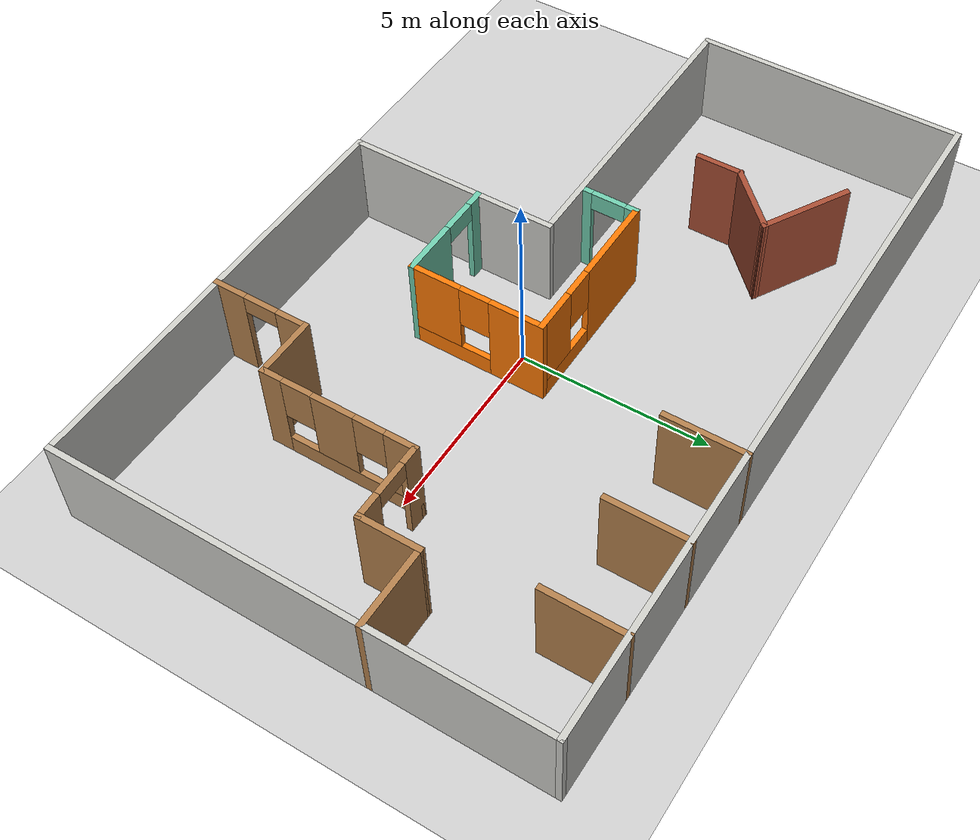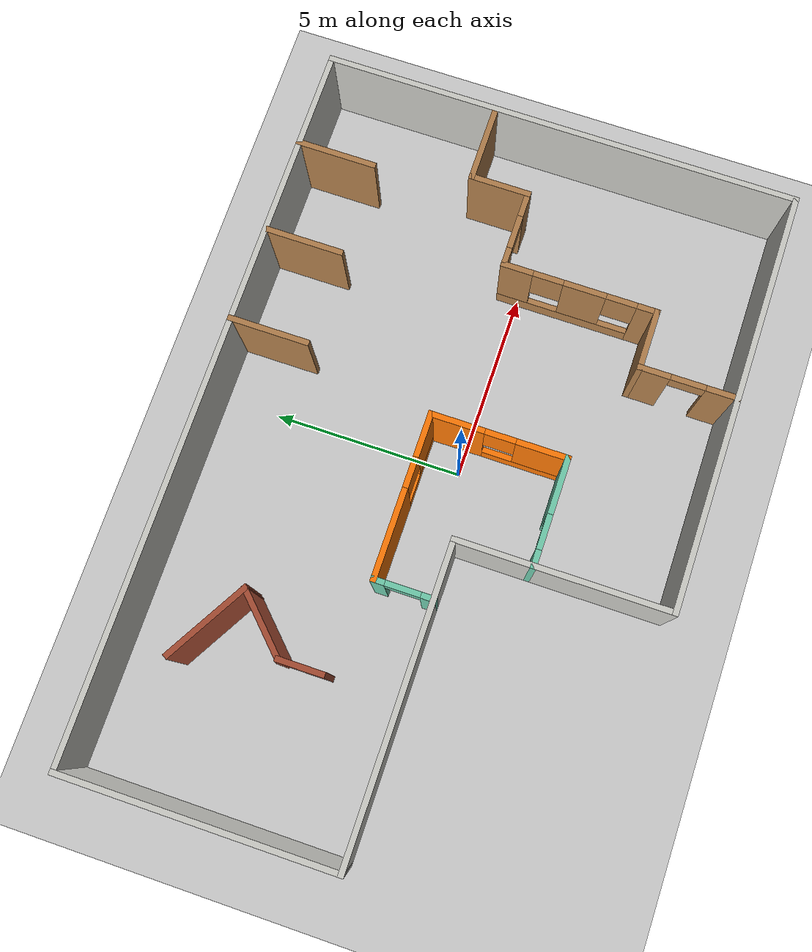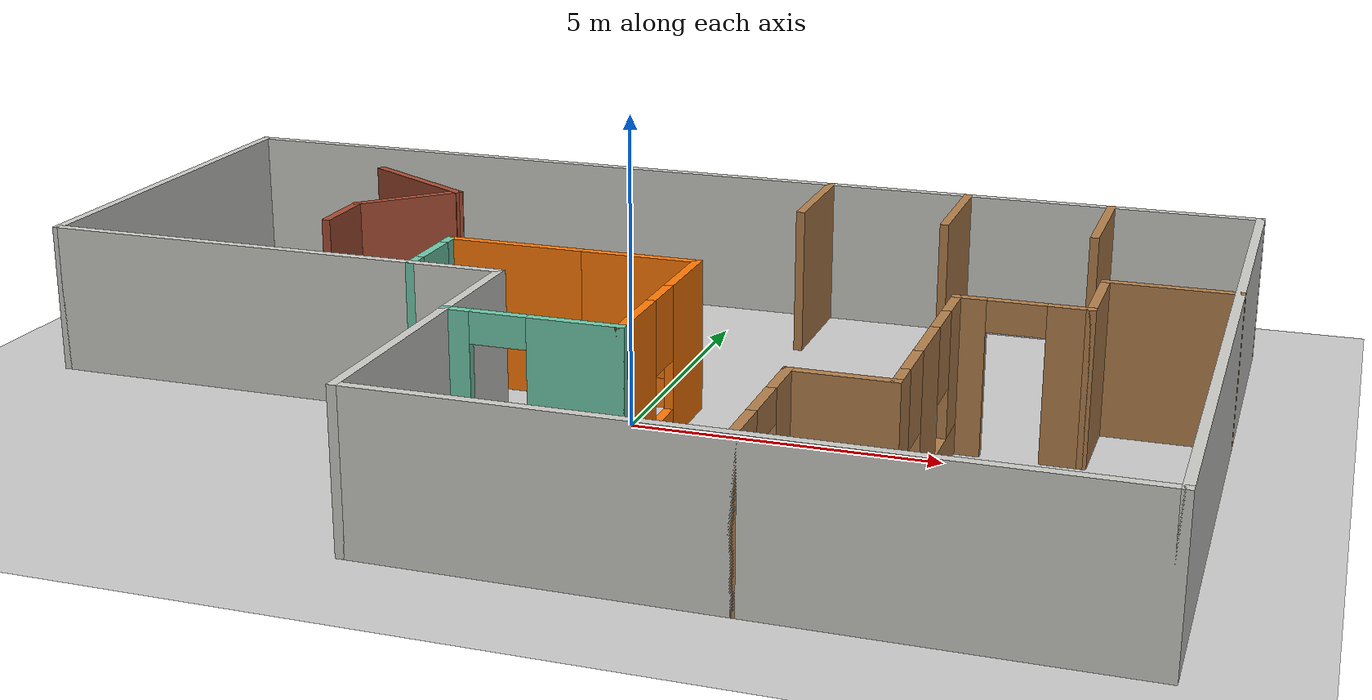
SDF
<sdf version="1.6">
 <world name="default">
  <light name="sun" type="directional">
   <pose>0 0 10 0 -0 0</pose>
   <diffuse>0.8 0.8 0.8 1</diffuse>
   <specular>0.2 0.2 0.2 1</specular>
   <attenuation>
    <range>1000</range>
    <constant>0.9</constant>
    <linear>0.01</linear>
    <quadratic>0.001</quadratic>
   </attenuation>
   <direction>-0.5 0.1 -0.9</direction>
  </light>
  <model name="ground_plane">
   <static>1</static>
   <link name="link">
    <collision name="collision">
     <geometry><plane><normal>0 0 1</normal><size>100 100</size></plane></geometry>
     <surface><friction><ode><mu>100</mu><mu2>50</mu2></ode></friction></surface>
    </collision>
    <visual name="visual">
     <cast_shadows>0</cast_shadows>
     <geometry><plane><normal>0 0 1</normal><size>100 100</size></plane></geometry>
     <material>
      <script><uri>file://media/materials/scripts/gazebo.material</uri><name>Gazebo/Grey</name></script>
     </material>
    </visual>
   </link>
  </model>
  <gravity>0 0 -9.8</gravity>
  <magnetic_field>6e-06 2.3e-05 -4.2e-05</magnetic_field>
  <atmosphere type="adiabatic"/>
  <physics name="default_physics" default="0" type="ode">
   <max_step_size>0.001</max_step_size>
   <real_time_factor>1</real_time_factor>
   <real_time_update_rate>1000</real_time_update_rate>
  </physics>
  <scene><ambient>0.4 0.4 0.4 1</ambient><background>0.7 0.7 0.7 1</background><shadows>1</shadows></scene>
  <spherical_coordinates>
   <surface_model>EARTH_WGS84</surface_model>
   <latitude_deg>0</latitude_deg>
   <longitude_deg>0</longitude_deg>
   <elevation>0</elevation>
   <heading_deg>0</heading_deg>
  </spherical_coordinates>
  <model name="newer_world.world">
   <pose>-0.5 0.25 0 0 -0 0</pose>
   <link name="Wall_0">
    <collision name="Wall_0_Collision">
     <geometry><box><size>5.65 0.15 2.5</size></box></geometry>
     <pose>0 0 1.25 0 -0 0</pose>
    </collision>
    <visual name="Wall_0_Visual">
     <pose>0 0 1.25 0 -0 0</pose>
     <geometry><box><size>5.65 0.15 2.5</size></box></geometry>
     <material>
      <script><uri>file://media/materials/scripts/gazebo.material</uri><name>Gazebo/CeilingTiled</name></script>
      <ambient>1 1 1 1</ambient>
     </material>
     <meta><layer>0</layer></meta>
    </visual>
    <pose>-1.5 -3.5 0 0 0 -1.5708</pose>
   </link>
   <link name="Wall_1">
    <collision name="Wall_1_Collision">
     <geometry><box><size>11.15 0.15 2.5</size></box></geometry>
     <pose>0 0 1.25 0 -0 0</pose>
    </collision>
    <visual name="Wall_1_Visual">
     <pose>0 0 1.25 0 -0 0</pose>
     <geometry><box><size>11.15 0.15 2.5</size></box></geometry>
     <material>
      <script><uri>file://media/materials/scripts/gazebo.material</uri><name>Gazebo/CeilingTiled</name></script>
      <ambient>1 1 1 1</ambient>
     </material>
     <meta><layer>0</layer></meta>
    </visual>
    <pose>4 -6.25 0 0 -0 0</pose>
   </link>
   <link name="Wall_11">
    <collision name="Wall_11_Collision">
     <geometry><box><size>2.15 0.15 2.5</size></box></geometry>
     <pose>0 0 1.25 0 -0 0</pose>
    </collision>
    <visual name="Wall_11_Visual">
     <pose>0 0 1.25 0 -0 0</pose>
     <geometry><box><size>2.15 0.15 2.5</size></box></geometry>
     <material>
      <script><uri>file://media/materials/scripts/gazebo.material</uri><name>Gazebo/Wood</name></script>
      <ambient>1 1 1 1</ambient>
     </material>
     <meta><layer>0</layer></meta>
    </visual>
    <pose>7 5.25 0 0 0 -1.5708</pose>
   </link>
   <link name="Wall_13">
    <collision name="Wall_13_Collision">
     <geometry><box><size>2.5 0.15 2.5</size></box></geometry>
     <pose>0 0 1.25 0 -0 0</pose>
    </collision>
    <visual name="Wall_13_Visual">
     <pose>0 0 1.25 0 -0 0</pose>
     <geometry><box><size>2.5 0.15 2.5</size></box></geometry>
     <material>
      <script><uri>file://media/materials/scripts/gazebo.material</uri><name>Gazebo/Bricks</name></script>
      <ambient>1 1 1 1</ambient>
     </material>
     <meta><layer>0</layer></meta>
    </visual>
    <pose>-5.18276 4.14837 0 0 0 -0.523599</pose>
   </link>
   <link name="Wall_14">
    <collision name="Wall_14_Collision">
     <geometry><box><size>2 0.15 2.5</size></box></geometry>
     <pose>0 0 1.25 0 -0 0</pose>
    </collision>
    <visual name="Wall_14_Visual">
     <pose>0 0 1.25 0 -0 0</pose>
     <geometry><box><size>2 0.15 2.5</size></box></geometry>
     <material>
      <script><uri>file://media/materials/scripts/gazebo.material</uri><name>Gazebo/Bricks</name></script>
      <ambient>1 1 1 1</ambient>
     </material>
     <meta><layer>0</layer></meta>
    </visual>
    <pose>-4.81925 2.9068 0 0 0 -2.35619</pose>
   </link>
   <link name="Wall_15">
    <collision name="Wall_15_Collision">
     <geometry><box><size>1.25 0.15 2.5</size></box></geometry>
     <pose>0 0 1.25 0 -0 0</pose>
    </collision>
    <visual name="Wall_15_Visual">
     <pose>0 0 1.25 0 -0 0</pose>
     <geometry><box><size>1.25 0.15 2.5</size></box></geometry>
     <material>
      <script><uri>file://media/materials/scripts/gazebo.material</uri><name>Gazebo/Bricks</name></script>
      <ambient>1 1 1 1</ambient>
     </material>
     <meta><layer>0</layer></meta>
    </visual>
    <pose>-5.47332 1.70273 0 0 0 -1.5708</pose>
   </link>
   <link name="Wall_17">
    <pose>5.5 -1.75 0 0 -0 1.5708</pose>
    <visual name="Wall_17_Visual_0">
     <pose>-1.78073 0 1.25 0 -0 0</pose>
     <geometry><box><size>0.58853 0.15 2.5</size></box></geometry>
     <material>
      <script><uri>file://media/materials/scripts/gazebo.material</uri><name>Gazebo/Wood</name></script>
      <ambient>1 1 1 1</ambient>
     </material>
     <meta><layer>0</layer></meta>
    </visual>
    <collision name="Wall_17_Collision_0">
     <geometry><box><size>0.58853 0.15 2.5</size></box></geometry>
     <pose>-1.78073 0 1.25 0 -0 0</pose>
    </collision>
    <visual name="Wall_17_Visual_1">
     <pose>0.294265 0 0.25 0 -0 0</pose>
     <geometry><box><size>3.56147 0.15 0.5</size></box></geometry>
     <material>
      <script><uri>file://media/materials/scripts/gazebo.material</uri><name>Gazebo/Wood</name></script>
      <ambient>1 1 1 1</ambient>
     </material>
     <meta><layer>0</layer></meta>
    </visual>
    <collision name="Wall_17_Collision_1">
     <geometry><box><size>3.56147 0.15 0.5</size></box></geometry>
     <pose>0.294265 0 0.25 0 -0 0</pose>
    </collision>
    <visual name="Wall_17_Visual_2">
     <pose>-0.127774 0 1.5 0 -0 0</pose>
     <geometry><box><size>1.11739 0.15 2</size></box></geometry>
     <material>
      <script><uri>file://media/materials/scripts/gazebo.material</uri><name>Gazebo/Wood</name></script>
      <ambient>1 1 1 1</ambient>
     </material>
     <meta><layer>0</layer></meta>
    </visual>
    <collision name="Wall_17_Collision_2">
     <geometry><box><size>1.11739 0.15 2</size></box></geometry>
     <pose>-0.127774 0 1.5 0 -0 0</pose>
    </collision>
    <visual name="Wall_17_Visual_3">
     <pose>1.65296 0 1.5 0 -0 0</pose>
     <geometry><box><size>0.844078 0.15 2</size></box></geometry>
     <material>
      <script><uri>file://media/materials/scripts/gazebo.material</uri><name>Gazebo/Wood</name></script>
      <ambient>1 1 1 1</ambient>
     </material>
     <meta><layer>0</layer></meta>
    </visual>
    <collision name="Wall_17_Collision_3">
     <geometry><box><size>0.844078 0.15 2</size></box></geometry>
     <pose>1.65296 0 1.5 0 -0 0</pose>
    </collision>
    <visual name="Wall_17_Visual_4">
     <pose>-1.08647 0 1.9 0 -0 0</pose>
     <geometry><box><size>0.8 0.15 1.2</size></box></geometry>
     <material>
      <script><uri>file://media/materials/scripts/gazebo.material</uri><name>Gazebo/Wood</name></script>
      <ambient>1 1 1 1</ambient>
     </material>
     <meta><layer>0</layer></meta>
    </visual>
    <collision name="Wall_17_Collision_4">
     <geometry><box><size>0.8 0.15 1.2</size></box></geometry>
     <pose>-1.08647 0 1.9 0 -0 0</pose>
    </collision>
    <visual name="Wall_17_Visual_5">
     <pose>0.830922 0 1.9 0 -0 0</pose>
     <geometry><box><size>0.8 0.15 1.2</size></box></geometry>
     <material>
      <script><uri>file://media/materials/scripts/gazebo.material</uri><name>Gazebo/Wood</name></script>
      <ambient>1 1 1 1</ambient>
     </material>
     <meta><layer>0</layer></meta>
    </visual>
    <collision name="Wall_17_Collision_5">
     <geometry><box><size>0.8 0.15 1.2</size></box></geometry>
     <pose>0.830922 0 1.9 0 -0 0</pose>
    </collision>
   </link>
   <link name="Wall_18">
    <pose>6.5 0.25 0 0 -0 0</pose>
    <visual name="Wall_18_Visual_0">
     <pose>-0.807938 0 1.25 0 -0 0</pose>
     <geometry><box><size>0.534124 0.15 2.5</size></box></geometry>
     <material>
      <script><uri>file://media/materials/scripts/gazebo.material</uri><name>Gazebo/Wood</name></script>
      <ambient>1 1 1 1</ambient>
     </material>
     <meta><layer>0</layer></meta>
    </visual>
    <collision name="Wall_18_Collision_0">
     <geometry><box><size>0.534124 0.15 2.5</size></box></geometry>
     <pose>-0.807938 0 1.25 0 -0 0</pose>
    </collision>
    <visual name="Wall_18_Visual_1">
     <pose>0.717062 0 1.25 0 -0 0</pose>
     <geometry><box><size>0.715876 0.15 2.5</size></box></geometry>
     <material>
      <script><uri>file://media/materials/scripts/gazebo.material</uri><name>Gazebo/Wood</name></script>
      <ambient>1 1 1 1</ambient>
     </material>
     <meta><layer>0</layer></meta>
    </visual>
    <collision name="Wall_18_Collision_1">
     <geometry><box><size>0.715876 0.15 2.5</size></box></geometry>
     <pose>0.717062 0 1.25 0 -0 0</pose>
    </collision>
    <visual name="Wall_18_Visual_2">
     <pose>-0.090876 0 2.25 0 -0 0</pose>
     <geometry><box><size>0.9 0.15 0.5</size></box></geometry>
     <material>
      <script><uri>file://media/materials/scripts/gazebo.material</uri><name>Gazebo/Wood</name></script>
      <ambient>1 1 1 1</ambient>
     </material>
     <meta><layer>0</layer></meta>
    </visual>
    <collision name="Wall_18_Collision_2">
     <geometry><box><size>0.9 0.15 0.5</size></box></geometry>
     <pose>-0.090876 0 2.25 0 -0 0</pose>
    </collision>
   </link>
   <link name="Wall_19">
    <collision name="Wall_19_Collision">
     <geometry><box><size>1.65 0.15 2.5</size></box></geometry>
     <pose>0 0 1.25 0 -0 0</pose>
    </collision>
    <visual name="Wall_19_Visual">
     <pose>0 0 1.25 0 -0 0</pose>
     <geometry><box><size>1.65 0.15 2.5</size></box></geometry>
     <material>
      <script><uri>file://media/materials/scripts/gazebo.material</uri><name>Gazebo/Wood</name></script>
      <ambient>1 1 1 1</ambient>
     </material>
     <meta><layer>0</layer></meta>
    </visual>
    <pose>7.5 1 0 0 -0 1.5708</pose>
   </link>
   <link name="Wall_2">
    <collision name="Wall_2_Collision">
     <geometry><box><size>12.65 0.15 2.5</size></box></geometry>
     <pose>0 0 1.25 0 -0 0</pose>
    </collision>
    <visual name="Wall_2_Visual">
     <pose>0 0 1.25 0 -0 0</pose>
     <geometry><box><size>12.65 0.15 2.5</size></box></geometry>
     <material>
      <script><uri>file://media/materials/scripts/gazebo.material</uri><name>Gazebo/CeilingTiled</name></script>
      <ambient>1 1 1 1</ambient>
     </material>
     <meta><layer>0</layer></meta>
    </visual>
    <pose>9.5 0 0 0 -0 1.5708</pose>
   </link>
   <link name="Wall_20">
    <collision name="Wall_20_Collision">
     <geometry><box><size>2.15 0.15 2.5</size></box></geometry>
     <pose>0 0 1.25 0 -0 0</pose>
    </collision>
    <visual name="Wall_20_Visual">
     <pose>0 0 1.25 0 -0 0</pose>
     <geometry><box><size>2.15 0.15 2.5</size></box></geometry>
     <material>
      <script><uri>file://media/materials/scripts/gazebo.material</uri><name>Gazebo/Wood</name></script>
      <ambient>1 1 1 1</ambient>
     </material>
     <meta><layer>0</layer></meta>
    </visual>
    <pose>8.5 1.75 0 0 -0 0</pose>
   </link>
   <link name="Wall_22">
    <collision name="Wall_22_Collision">
     <geometry><box><size>1.65 0.15 2.5</size></box></geometry>
     <pose>0 0 1.25 0 -0 0</pose>
    </collision>
    <visual name="Wall_22_Visual">
     <pose>0 0 1.25 0 -0 0</pose>
     <geometry><box><size>1.65 0.15 2.5</size></box></geometry>
     <material>
      <script><uri>file://media/materials/scripts/gazebo.material</uri><name>Gazebo/Wood</name></script>
      <ambient>1 1 1 1</ambient>
     </material>
     <meta><layer>0</layer></meta>
    </visual>
    <pose>4.75 -3.75 0 0 -0 3.14159</pose>
   </link>
   <link name="Wall_23">
    <pose>4 -5 0 0 0 -1.5708</pose>
    <visual name="Wall_23_Visual_0">
     <pose>-0.893178 0 1.25 0 -0 0</pose>
     <geometry><box><size>0.863644 0.15 2.5</size></box></geometry>
     <material>
      <script><uri>file://media/materials/scripts/gazebo.material</uri><name>Gazebo/Wood</name></script>
      <ambient>1 1 1 1</ambient>
     </material>
     <meta><layer>0</layer></meta>
    </visual>
    <collision name="Wall_23_Collision_0">
     <geometry><box><size>0.863644 0.15 2.5</size></box></geometry>
     <pose>-0.893178 0 1.25 0 -0 0</pose>
    </collision>
    <visual name="Wall_23_Visual_1">
     <pose>0.881822 0 1.25 0 -0 0</pose>
     <geometry><box><size>0.886356 0.15 2.5</size></box></geometry>
     <material>
      <script><uri>file://media/materials/scripts/gazebo.material</uri><name>Gazebo/Wood</name></script>
      <ambient>1 1 1 1</ambient>
     </material>
     <meta><layer>0</layer></meta>
    </visual>
    <collision name="Wall_23_Collision_1">
     <geometry><box><size>0.886356 0.15 2.5</size></box></geometry>
     <pose>0.881822 0 1.25 0 -0 0</pose>
    </collision>
    <visual name="Wall_23_Visual_2">
     <pose>-0.011356 0 2.25 0 -0 0</pose>
     <geometry><box><size>0.9 0.15 0.5</size></box></geometry>
     <material>
      <script><uri>file://media/materials/scripts/gazebo.material</uri><name>Gazebo/Wood</name></script>
      <ambient>1 1 1 1</ambient>
     </material>
     <meta><layer>0</layer></meta>
    </visual>
    <collision name="Wall_23_Collision_2">
     <geometry><box><size>0.9 0.15 0.5</size></box></geometry>
     <pose>-0.011356 0 2.25 0 -0 0</pose>
    </collision>
   </link>
   <link name="Wall_25">
    <pose>-3 0 0 0 -0 1.5708</pose>
    <visual name="Wall_25_Visual_0">
     <pose>-0.628621 0 1.25 0 -0 0</pose>
     <geometry><box><size>0.392759 0.15 2.5</size></box></geometry>
     <material>
      <script><uri>file://media/materials/scripts/gazebo.material</uri><name>Gazebo/Grey</name></script>
      <ambient>0.435294 0.796078 0.67451 1</ambient>
     </material>
     <meta><layer>0</layer></meta>
    </visual>
    <collision name="Wall_25_Collision_0">
     <geometry><box><size>0.392759 0.15 2.5</size></box></geometry>
     <pose>-0.628621 0 1.25 0 -0 0</pose>
    </collision>
    <visual name="Wall_25_Visual_1">
     <pose>0.646379 0 1.25 0 -0 0</pose>
     <geometry><box><size>0.357241 0.15 2.5</size></box></geometry>
     <material>
      <script><uri>file://media/materials/scripts/gazebo.material</uri><name>Gazebo/Grey</name></script>
      <ambient>0.435294 0.796078 0.67451 1</ambient>
     </material>
     <meta><layer>0</layer></meta>
    </visual>
    <collision name="Wall_25_Collision_1">
     <geometry><box><size>0.357241 0.15 2.5</size></box></geometry>
     <pose>0.646379 0 1.25 0 -0 0</pose>
    </collision>
    <visual name="Wall_25_Visual_2">
     <pose>0.017759 0 2.25 0 -0 0</pose>
     <geometry><box><size>0.9 0.15 0.5</size></box></geometry>
     <material>
      <script><uri>file://media/materials/scripts/gazebo.material</uri><name>Gazebo/Grey</name></script>
      <ambient>0.435294 0.796078 0.67451 1</ambient>
     </material>
     <meta><layer>0</layer></meta>
    </visual>
    <collision name="Wall_25_Collision_2">
     <geometry><box><size>0.9 0.15 0.5</size></box></geometry>
     <pose>0.017759 0 2.25 0 -0 0</pose>
    </collision>
   </link>
   <link name="Wall_26">
    <pose>-0.875 0.75 0 0 -0 0</pose>
    <visual name="Wall_26_Visual_0">
     <pose>-1.00359 0 1.25 0 -0 0</pose>
     <geometry><box><size>2.39282 0.15 2.5</size></box></geometry>
     <material>
      <script><uri>file://media/materials/scripts/gazebo.material</uri><name>Gazebo/Grey</name></script>
      <ambient>0.996078 0.47451 0.0196078 1</ambient>
     </material>
     <meta><layer>0</layer></meta>
    </visual>
    <collision name="Wall_26_Collision_0">
     <geometry><box><size>2.39282 0.15 2.5</size></box></geometry>
     <pose>-1.00359 0 1.25 0 -0 0</pose>
    </collision>
    <visual name="Wall_26_Visual_1">
     <pose>1.19641 0 0.25 0 -0 0</pose>
     <geometry><box><size>2.00718 0.15 0.5</size></box></geometry>
     <material>
      <script><uri>file://media/materials/scripts/gazebo.material</uri><name>Gazebo/Grey</name></script>
      <ambient>0.996078 0.47451 0.0196078 1</ambient>
     </material>
     <meta><layer>0</layer></meta>
    </visual>
    <collision name="Wall_26_Collision_1">
     <geometry><box><size>2.00718 0.15 0.5</size></box></geometry>
     <pose>1.19641 0 0.25 0 -0 0</pose>
    </collision>
    <visual name="Wall_26_Visual_2">
     <pose>1.59641 0 1.5 0 -0 0</pose>
     <geometry><box><size>1.20718 0.15 2</size></box></geometry>
     <material>
      <script><uri>file://media/materials/scripts/gazebo.material</uri><name>Gazebo/Grey</name></script>
      <ambient>0.996078 0.47451 0.0196078 1</ambient>
     </material>
     <meta><layer>0</layer></meta>
    </visual>
    <collision name="Wall_26_Collision_2">
     <geometry><box><size>1.20718 0.15 2</size></box></geometry>
     <pose>1.59641 0 1.5 0 -0 0</pose>
    </collision>
    <visual name="Wall_26_Visual_3">
     <pose>0.59282 0 1.9 0 -0 0</pose>
     <geometry><box><size>0.8 0.15 1.2</size></box></geometry>
     <material>
      <script><uri>file://media/materials/scripts/gazebo.material</uri><name>Gazebo/Grey</name></script>
      <ambient>0.996078 0.47451 0.0196078 1</ambient>
     </material>
     <meta><layer>0</layer></meta>
    </visual>
    <collision name="Wall_26_Collision_3">
     <geometry><box><size>0.8 0.15 1.2</size></box></geometry>
     <pose>0.59282 0 1.9 0 -0 0</pose>
    </collision>
   </link>
   <link name="Wall_27">
    <pose>1.25 -1 0 0 0 -1.5708</pose>
    <visual name="Wall_27_Visual_0">
     <pose>-1.09427 0 1.25 0 -0 0</pose>
     <geometry><box><size>1.46147 0.15 2.5</size></box></geometry>
     <material>
      <script><uri>file://media/materials/scripts/gazebo.material</uri><name>Gazebo/Grey</name></script>
      <ambient>0.996078 0.47451 0.0196078 1</ambient>
     </material>
     <meta><layer>0</layer></meta>
    </visual>
    <collision name="Wall_27_Collision_0">
     <geometry><box><size>1.46147 0.15 2.5</size></box></geometry>
     <pose>-1.09427 0 1.25 0 -0 0</pose>
    </collision>
    <visual name="Wall_27_Visual_1">
     <pose>0.730735 0 0.25 0 -0 0</pose>
     <geometry><box><size>2.18853 0.15 0.5</size></box></geometry>
     <material>
      <script><uri>file://media/materials/scripts/gazebo.material</uri><name>Gazebo/Grey</name></script>
      <ambient>0.996078 0.47451 0.0196078 1</ambient>
     </material>
     <meta><layer>0</layer></meta>
    </visual>
    <collision name="Wall_27_Collision_1">
     <geometry><box><size>2.18853 0.15 0.5</size></box></geometry>
     <pose>0.730735 0 0.25 0 -0 0</pose>
    </collision>
    <visual name="Wall_27_Visual_2">
     <pose>1.13074 0 1.5 0 -0 0</pose>
     <geometry><box><size>1.38853 0.15 2</size></box></geometry>
     <material>
      <script><uri>file://media/materials/scripts/gazebo.material</uri><name>Gazebo/Grey</name></script>
      <ambient>0.996078 0.47451 0.0196078 1</ambient>
     </material>
     <meta><layer>0</layer></meta>
    </visual>
    <collision name="Wall_27_Collision_2">
     <geometry><box><size>1.38853 0.15 2</size></box></geometry>
     <pose>1.13074 0 1.5 0 -0 0</pose>
    </collision>
    <visual name="Wall_27_Visual_3">
     <pose>0.03647 0 1.9 0 -0 0</pose>
     <geometry><box><size>0.8 0.15 1.2</size></box></geometry>
     <material>
      <script><uri>file://media/materials/scripts/gazebo.material</uri><name>Gazebo/Grey</name></script>
      <ambient>0.996078 0.47451 0.0196078 1</ambient>
     </material>
     <meta><layer>0</layer></meta>
    </visual>
    <collision name="Wall_27_Collision_3">
     <geometry><box><size>0.8 0.15 1.2</size></box></geometry>
     <pose>0.03647 0 1.9 0 -0 0</pose>
    </collision>
   </link>
   <link name="Wall_28">
    <pose>-0.125 -2.75 0 0 -0 3.14159</pose>
    <visual name="Wall_28_Visual_0">
     <pose>-0.690572 0 1.25 0 -0 0</pose>
     <geometry><box><size>1.51886 0.15 2.5</size></box></geometry>
     <material>
      <script><uri>file://media/materials/scripts/gazebo.material</uri><name>Gazebo/Grey</name></script>
      <ambient>0.435294 0.796078 0.67451 1</ambient>
     </material>
     <meta><layer>0</layer></meta>
    </visual>
    <collision name="Wall_28_Collision_0">
     <geometry><box><size>1.51886 0.15 2.5</size></box></geometry>
     <pose>-0.690572 0 1.25 0 -0 0</pose>
    </collision>
    <visual name="Wall_28_Visual_1">
     <pose>1.20943 0 1.25 0 -0 0</pose>
     <geometry><box><size>0.481145 0.15 2.5</size></box></geometry>
     <material>
      <script><uri>file://media/materials/scripts/gazebo.material</uri><name>Gazebo/Grey</name></script>
      <ambient>0.435294 0.796078 0.67451 1</ambient>
     </material>
     <meta><layer>0</layer></meta>
    </visual>
    <collision name="Wall_28_Collision_1">
     <geometry><box><size>0.481145 0.15 2.5</size></box></geometry>
     <pose>1.20943 0 1.25 0 -0 0</pose>
    </collision>
    <visual name="Wall_28_Visual_2">
     <pose>0.518855 0 2.25 0 -0 0</pose>
     <geometry><box><size>0.9 0.15 0.5</size></box></geometry>
     <material>
      <script><uri>file://media/materials/scripts/gazebo.material</uri><name>Gazebo/Grey</name></script>
      <ambient>0.435294 0.796078 0.67451 1</ambient>
     </material>
     <meta><layer>0</layer></meta>
    </visual>
    <collision name="Wall_28_Collision_2">
     <geometry><box><size>0.9 0.15 0.5</size></box></geometry>
     <pose>0.518855 0 2.25 0 -0 0</pose>
    </collision>
   </link>
   <link name="Wall_3">
    <collision name="Wall_3_Collision">
     <geometry><box><size>19.15 0.15 2.5</size></box></geometry>
     <pose>0 0 1.25 0 -0 0</pose>
    </collision>
    <visual name="Wall_3_Visual">
     <pose>0 0 1.25 0 -0 0</pose>
     <geometry><box><size>19.15 0.15 2.5</size></box></geometry>
     <material>
      <script><uri>file://media/materials/scripts/gazebo.material</uri><name>Gazebo/CeilingTiled</name></script>
      <ambient>1 1 1 1</ambient>
     </material>
     <meta><layer>0</layer></meta>
    </visual>
    <pose>0 6.25 0 0 -0 3.14159</pose>
   </link>
   <link name="Wall_4">
    <collision name="Wall_4_Collision">
     <geometry><box><size>7.15 0.15 2.5</size></box></geometry>
     <pose>0 0 1.25 0 -0 0</pose>
    </collision>
    <visual name="Wall_4_Visual">
     <pose>0 0 1.25 0 -0 0</pose>
     <geometry><box><size>7.15 0.15 2.5</size></box></geometry>
     <material>
      <script><uri>file://media/materials/scripts/gazebo.material</uri><name>Gazebo/CeilingTiled</name></script>
      <ambient>1 1 1 1</ambient>
     </material>
     <meta><layer>0</layer></meta>
    </visual>
    <pose>-9.5 2.75 0 0 0 -1.5708</pose>
   </link>
   <link name="Wall_5">
    <collision name="Wall_5_Collision">
     <geometry><box><size>8.15 0.15 2.5</size></box></geometry>
     <pose>0 0 1.25 0 -0 0</pose>
    </collision>
    <visual name="Wall_5_Visual">
     <pose>0 0 1.25 0 -0 0</pose>
     <geometry><box><size>8.15 0.15 2.5</size></box></geometry>
     <material>
      <script><uri>file://media/materials/scripts/gazebo.material</uri><name>Gazebo/CeilingTiled</name></script>
      <ambient>1 1 1 1</ambient>
     </material>
     <meta><layer>0</layer></meta>
    </visual>
    <pose>-5.5 -0.75 0 0 -0 0</pose>
   </link>
   <link name="Wall_7">
    <collision name="Wall_7_Collision">
     <geometry><box><size>2.15 0.15 2.5</size></box></geometry>
     <pose>0 0 1.25 0 -0 0</pose>
    </collision>
    <visual name="Wall_7_Visual">
     <pose>0 0 1.25 0 -0 0</pose>
     <geometry><box><size>2.15 0.15 2.5</size></box></geometry>
     <material>
      <script><uri>file://media/materials/scripts/gazebo.material</uri><name>Gazebo/Wood</name></script>
      <ambient>1 1 1 1</ambient>
     </material>
     <meta><layer>0</layer></meta>
    </visual>
    <pose>2 5.25 0 0 0 -1.5708</pose>
   </link>
   <link name="Wall_9">
    <collision name="Wall_9_Collision">
     <geometry><box><size>2.15 0.15 2.5</size></box></geometry>
     <pose>0 0 1.25 0 -0 0</pose>
    </collision>
    <visual name="Wall_9_Visual">
     <pose>0 0 1.25 0 -0 0</pose>
     <geometry><box><size>2.15 0.15 2.5</size></box></geometry>
     <material>
      <script><uri>file://media/materials/scripts/gazebo.material</uri><name>Gazebo/Wood</name></script>
      <ambient>1 1 1 1</ambient>
     </material>
     <meta><layer>0</layer></meta>
    </visual>
    <pose>4.5 5.25 0 0 0 -1.5708</pose>
   </link>
   <static>1</static>
  </model>
 </world>
</sdf>
